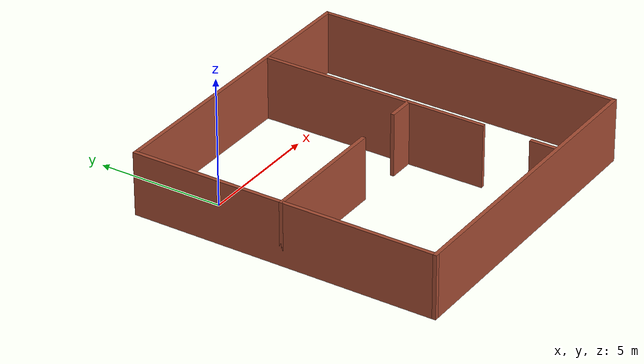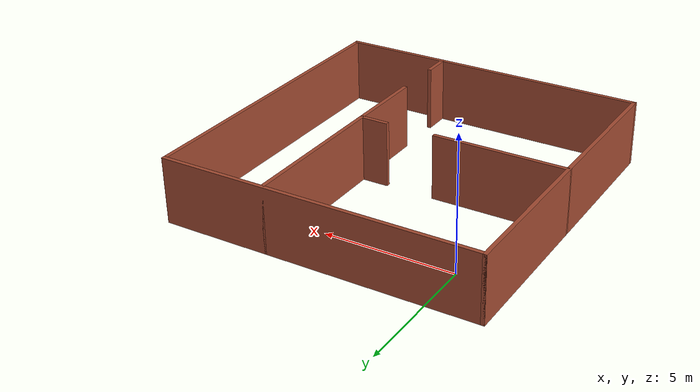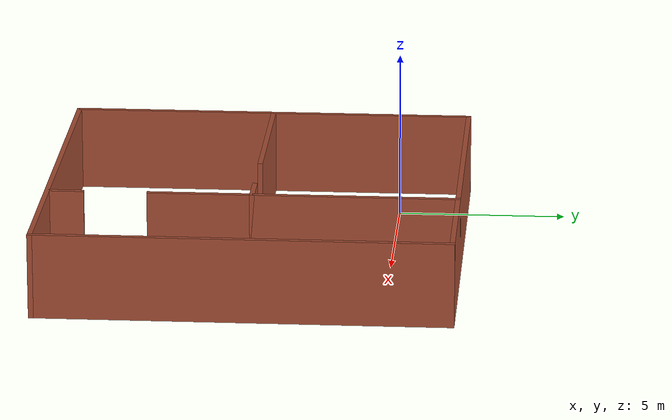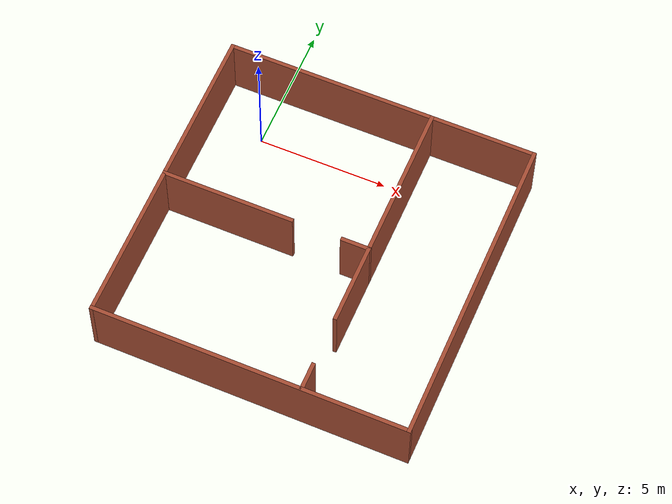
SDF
<?xml version='1.0'?>
<sdf version='1.6'>
  <model name='building'>
    <pose frame=''>4 -4 0 0 -0 0</pose>
    <link name='Wall_21'>
      <collision name='Wall_21_Collision'>
        <geometry>
          <box>
            <size>12.15 0.15 2.5</size>
          </box>
        </geometry>
        <pose frame=''>0 0 1.25 0 -0 0</pose>
      </collision>
      <visual name='Wall_21_Visual'>
        <pose frame=''>0 0 1.25 0 -0 0</pose>
        <geometry>
          <box>
            <size>12.15 0.15 2.5</size>
          </box>
        </geometry>
        <material>
          <script>
            <uri>file://media/materials/scripts/gazebo.material</uri>
            <name>Gazebo/Bricks</name>
          </script>
          <ambient>1 1 1 1</ambient>
        </material>
        <meta>
          <layer>0</layer>
        </meta>
      </visual>
      <pose frame=''>0 -6 0 0 -0 3.14159</pose>
    </link>
    <link name='Wall_23'>
      <collision name='Wall_23_Collision'>
        <geometry>
          <box>
            <size>12.15 0.15 2.5</size>
          </box>
        </geometry>
        <pose frame=''>0 0 1.25 0 -0 0</pose>
      </collision>
      <visual name='Wall_23_Visual'>
        <pose frame=''>0 0 1.25 0 -0 0</pose>
        <geometry>
          <box>
            <size>12.15 0.15 2.5</size>
          </box>
        </geometry>
        <material>
          <script>
            <uri>file://media/materials/scripts/gazebo.material</uri>
            <name>Gazebo/Bricks</name>
          </script>
          <ambient>1 1 1 1</ambient>
        </material>
        <meta>
          <layer>0</layer>
        </meta>
      </visual>
      <pose frame=''>-6 0 0 0 -0 1.5708</pose>
    </link>
    <link name='Wall_25'>
      <collision name='Wall_25_Collision'>
        <geometry>
          <box>
            <size>12.15 0.15 2.5</size>
          </box>
        </geometry>
        <pose frame=''>0 0 1.25 0 -0 0</pose>
      </collision>
      <visual name='Wall_25_Visual'>
        <pose frame=''>0 0 1.25 0 -0 0</pose>
        <geometry>
          <box>
            <size>12.15 0.15 2.5</size>
          </box>
        </geometry>
        <material>
          <script>
            <uri>file://media/materials/scripts/gazebo.material</uri>
            <name>Gazebo/Bricks</name>
          </script>
          <ambient>1 1 1 1</ambient>
        </material>
        <meta>
          <layer>0</layer>
        </meta>
      </visual>
      <pose frame=''>0 6 0 0 -0 0</pose>
    </link>
    <link name='Wall_28'>
      <collision name='Wall_28_Collision'>
        <geometry>
          <box>
            <size>12.15 0.15 2.5</size>
          </box>
        </geometry>
        <pose frame=''>0 0 1.25 0 -0 0</pose>
      </collision>
      <visual name='Wall_28_Visual'>
        <pose frame=''>0 0 1.25 0 -0 0</pose>
        <geometry>
          <box>
            <size>12.15 0.15 2.5</size>
          </box>
        </geometry>
        <material>
          <script>
            <uri>file://media/materials/scripts/gazebo.material</uri>
            <name>Gazebo/Bricks</name>
          </script>
          <ambient>1 1 1 1</ambient>
        </material>
        <meta>
          <layer>0</layer>
        </meta>
      </visual>
      <pose frame=''>6 0 0 0 0 -1.5708</pose>
    </link>
    <link name='Wall_30'>
      <collision name='Wall_30_Collision'>
        <geometry>
          <box>
            <size>9.15 0.15 2.5</size>
          </box>
        </geometry>
        <pose frame=''>0 0 1.25 0 -0 0</pose>
      </collision>
      <visual name='Wall_30_Visual'>
        <pose frame=''>0 0 1.25 0 -0 0</pose>
        <geometry>
          <box>
            <size>9.15 0.15 2.5</size>
          </box>
        </geometry>
        <material>
          <script>
            <uri>file://media/materials/scripts/gazebo.material</uri>
            <name>Gazebo/Bricks</name>
          </script>
          <ambient>1 1 1 1</ambient>
        </material>
        <meta>
          <layer>0</layer>
        </meta>
      </visual>
      <pose frame=''>2 1.5 0 0 0 -1.5708</pose>
    </link>
    <link name='Wall_32'>
      <collision name='Wall_32_Collision'>
        <geometry>
          <box>
            <size>1.15 0.15 2.5</size>
          </box>
        </geometry>
        <pose frame=''>0 0 1.25 0 -0 0</pose>
      </collision>
      <visual name='Wall_32_Visual'>
        <pose frame=''>0 0 1.25 0 -0 0</pose>
        <geometry>
          <box>
            <size>1.15 0.15 2.5</size>
          </box>
        </geometry>
        <material>
          <script>
            <uri>file://media/materials/scripts/gazebo.material</uri>
            <name>Gazebo/Bricks</name>
          </script>
          <ambient>1 1 1 1</ambient>
        </material>
        <meta>
          <layer>0</layer>
        </meta>
      </visual>
      <pose frame=''>2 -5.5 0 0 -0 1.5708</pose>
    </link>
    <link name='Wall_34'>
      <collision name='Wall_34_Collision'>
        <geometry>
          <box>
            <size>5.15 0.15 2.5</size>
          </box>
        </geometry>
        <pose frame=''>0 0 1.25 0 -0 0</pose>
      </collision>
      <visual name='Wall_34_Visual'>
        <pose frame=''>0 0 1.25 0 -0 0</pose>
        <geometry>
          <box>
            <size>5.15 0.15 2.5</size>
          </box>
        </geometry>
        <material>
          <script>
            <uri>file://media/materials/scripts/gazebo.material</uri>
            <name>Gazebo/Bricks</name>
          </script>
          <ambient>1 1 1 1</ambient>
        </material>
        <meta>
          <layer>0</layer>
        </meta>
      </visual>
      <pose frame=''>-3.5 0 0 0 -0 0</pose>
    </link>
    <link name='Wall_36'>
      <collision name='Wall_36_Collision'>
        <geometry>
          <box>
            <size>1.15 0.15 2.5</size>
          </box>
        </geometry>
        <pose frame=''>0 0 1.25 0 -0 0</pose>
      </collision>
      <visual name='Wall_36_Visual'>
        <pose frame=''>0 0 1.25 0 -0 0</pose>
        <geometry>
          <box>
            <size>1.15 0.15 2.5</size>
          </box>
        </geometry>
        <material>
          <script>
            <uri>file://media/materials/scripts/gazebo.material</uri>
            <name>Gazebo/Bricks</name>
          </script>
          <ambient>1 1 1 1</ambient>
        </material>
        <meta>
          <layer>0</layer>
        </meta>
      </visual>
      <pose frame=''>1.5 0 0 0 -0 3.14159</pose>
    </link>
    <static>1</static>
  </model>
</sdf>
